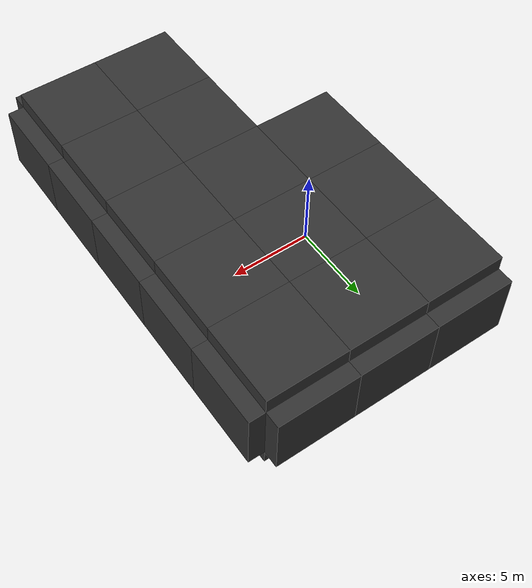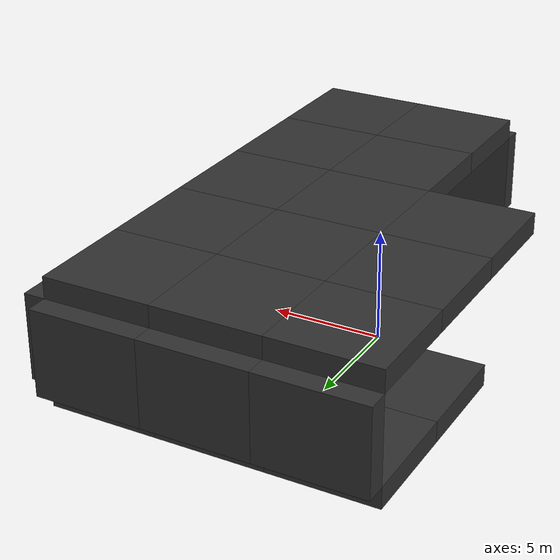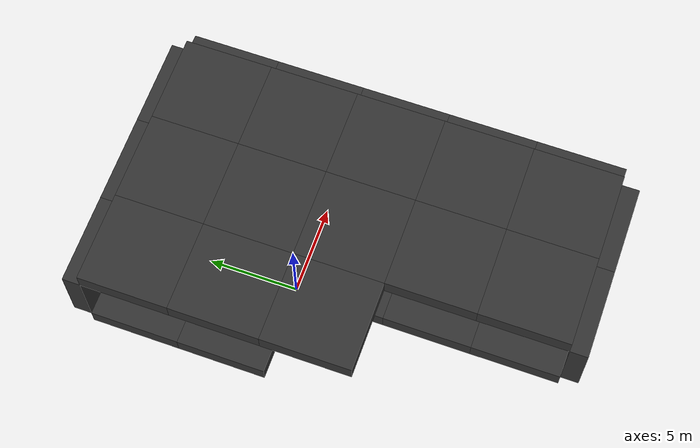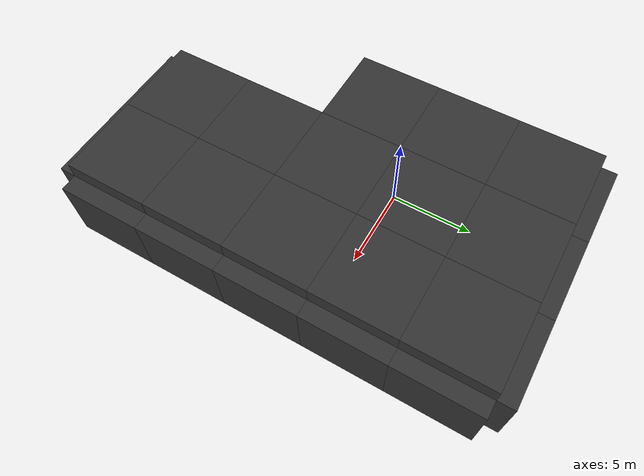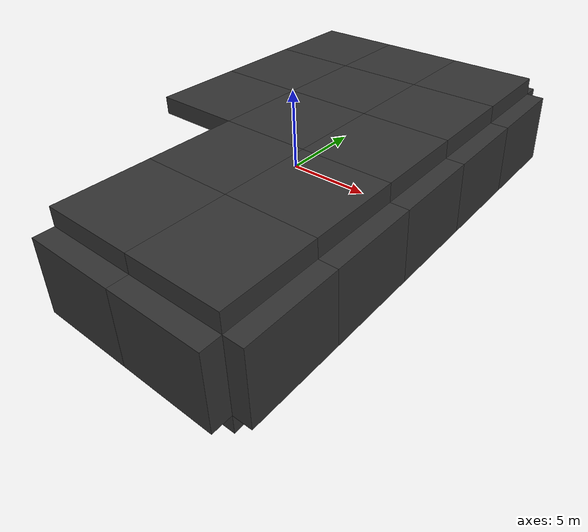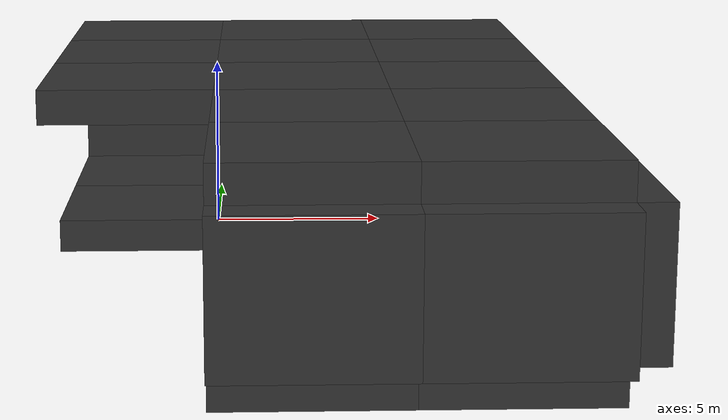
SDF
<sdf version="1.7">
 <world name="RG1">
  <model name="ceiling_13">
   <static>true</static>
   <pose>-2.5 -2.5 4.5 0.0 0.0 0.0</pose>
   <link name="ceiling_13-base-link">
    <visual name="ceiling_13-visual">
     <geometry><box><size>5 5 1.0</size></box></geometry>
     <material><diffuse>0.2 0.2 0.2 1</diffuse><specular>0.1 0.1 0.1 1</specular></material>
    </visual>
    <collision name="ceiling_13-collision"><geometry><box><size>5 5 1.0</size></box></geometry></collision>
    <light type="point" name="ceiling_13-light">
     <pose>0 0 -1 0 0 0</pose>
     <cast_shadows>false</cast_shadows>
     <diffuse>0.8 0.8 0.8 1</diffuse>
     <attenuation>
      <range>10</range>
      <constant>0.8</constant>
      <linear>0.05</linear>
      <quadratic>0.01</quadratic>
     </attenuation>
    </light>
   </link>
  </model>
  <model name="floor_14">
   <static>true</static>
   <pose>-2.5 2.5 -0.5 0.0 0.0 0.0</pose>
   <link name="floor_14-base-link">
    <visual name="floor_14-visual">
     <geometry><box><size>5 5 1.0</size></box></geometry>
     <material><diffuse>0.2 0.2 0.2 1</diffuse><specular>0.1 0.1 0.1 1</specular></material>
    </visual>
    <collision name="floor_14-collision"><geometry><box><size>5 5 1.0</size></box></geometry></collision>
   </link>
  </model>
  <model name="ceiling_14">
   <static>true</static>
   <pose>-2.5 2.5 4.5 0.0 0.0 0.0</pose>
   <link name="ceiling_14-base-link">
    <visual name="ceiling_14-visual">
     <geometry><box><size>5 5 1.0</size></box></geometry>
     <material><diffuse>0.2 0.2 0.2 1</diffuse><specular>0.1 0.1 0.1 1</specular></material>
    </visual>
    <collision name="ceiling_14-collision"><geometry><box><size>5 5 1.0</size></box></geometry></collision>
    <light type="point" name="ceiling_14-light">
     <pose>0 0 -1 0 0 0</pose>
     <cast_shadows>false</cast_shadows>
     <diffuse>0.8 0.8 0.8 1</diffuse>
     <attenuation>
      <range>10</range>
      <constant>0.8</constant>
      <linear>0.05</linear>
      <quadratic>0.01</quadratic>
     </attenuation>
    </light>
   </link>
  </model>
  <model name="floor_15">
   <static>true</static>
   <pose>-2.5 7.5 -0.5 0.0 0.0 0.0</pose>
   <link name="floor_15-base-link">
    <visual name="floor_15-visual">
     <geometry><box><size>5 5 1.0</size></box></geometry>
     <material><diffuse>0.2 0.2 0.2 1</diffuse><specular>0.1 0.1 0.1 1</specular></material>
    </visual>
    <collision name="floor_15-collision"><geometry><box><size>5 5 1.0</size></box></geometry></collision>
   </link>
  </model>
  <model name="ceiling_15">
   <static>true</static>
   <pose>-2.5 7.5 4.5 0.0 0.0 0.0</pose>
   <link name="ceiling_15-base-link">
    <visual name="ceiling_15-visual">
     <geometry><box><size>5 5 1.0</size></box></geometry>
     <material><diffuse>0.2 0.2 0.2 1</diffuse><specular>0.1 0.1 0.1 1</specular></material>
    </visual>
    <collision name="ceiling_15-collision"><geometry><box><size>5 5 1.0</size></box></geometry></collision>
    <light type="point" name="ceiling_15-light">
     <pose>0 0 -1 0 0 0</pose>
     <cast_shadows>false</cast_shadows>
     <diffuse>0.8 0.8 0.8 1</diffuse>
     <attenuation>
      <range>10</range>
      <constant>0.8</constant>
      <linear>0.05</linear>
      <quadratic>0.01</quadratic>
     </attenuation>
    </light>
   </link>
  </model>
  <model name="wall_11">
   <static>true</static>
   <pose>-2.5 10.5 2.0 0.0 0.0 0.0</pose>
   <link name="wall_11-base-link">
    <visual name="wall_11-visual">
     <geometry><box><size>5 1 4</size></box></geometry>
     <material><diffuse>0.2 0.2 0.2 1</diffuse><specular>0.1 0.1 0.1 1</specular></material>
    </visual>
    <collision name="wall_11-collision"><geometry><box><size>5 1 4</size></box></geometry></collision>
   </link>
  </model>
  <model name="floor_16">
   <static>true</static>
   <pose>2.5 -12.5 -0.5 0.0 0.0 0.0</pose>
   <link name="floor_16-base-link">
    <visual name="floor_16-visual">
     <geometry><box><size>5 5 1.0</size></box></geometry>
     <material><diffuse>0.2 0.2 0.2 1</diffuse><specular>0.1 0.1 0.1 1</specular></material>
    </visual>
    <collision name="floor_16-collision"><geometry><box><size>5 5 1.0</size></box></geometry></collision>
   </link>
  </model>
  <model name="ceiling_16">
   <static>true</static>
   <pose>2.5 -12.5 4.5 0.0 0.0 0.0</pose>
   <link name="ceiling_16-base-link">
    <visual name="ceiling_16-visual">
     <geometry><box><size>5 5 1.0</size></box></geometry>
     <material><diffuse>0.2 0.2 0.2 1</diffuse><specular>0.1 0.1 0.1 1</specular></material>
    </visual>
    <collision name="ceiling_16-collision"><geometry><box><size>5 5 1.0</size></box></geometry></collision>
    <light type="point" name="ceiling_16-light">
     <pose>0 0 -1 0 0 0</pose>
     <cast_shadows>false</cast_shadows>
     <diffuse>0.8 0.8 0.8 1</diffuse>
     <attenuation>
      <range>10</range>
      <constant>0.8</constant>
      <linear>0.05</linear>
      <quadratic>0.01</quadratic>
     </attenuation>
    </light>
   </link>
  </model>
  <model name="wall_12">
   <static>true</static>
   <pose>2.5 -15.5 2.0 0.0 0.0 0.0</pose>
   <link name="wall_12-base-link">
    <visual name="wall_12-visual">
     <geometry><box><size>5 1 4</size></box></geometry>
     <material><diffuse>0.2 0.2 0.2 1</diffuse><specular>0.1 0.1 0.1 1</specular></material>
    </visual>
    <collision name="wall_12-collision"><geometry><box><size>5 1 4</size></box></geometry></collision>
   </link>
  </model>
  <model name="floor_17">
   <static>true</static>
   <pose>2.5 -7.5 -0.5 0.0 0.0 0.0</pose>
   <link name="floor_17-base-link">
    <visual name="floor_17-visual">
     <geometry><box><size>5 5 1.0</size></box></geometry>
     <material><diffuse>0.2 0.2 0.2 1</diffuse><specular>0.1 0.1 0.1 1</specular></material>
    </visual>
    <collision name="floor_17-collision"><geometry><box><size>5 5 1.0</size></box></geometry></collision>
   </link>
  </model>
  <model name="ceiling_17">
   <static>true</static>
   <pose>2.5 -7.5 4.5 0.0 0.0 0.0</pose>
   <link name="ceiling_17-base-link">
    <visual name="ceiling_17-visual">
     <geometry><box><size>5 5 1.0</size></box></geometry>
     <material><diffuse>0.2 0.2 0.2 1</diffuse><specular>0.1 0.1 0.1 1</specular></material>
    </visual>
    <collision name="ceiling_17-collision"><geometry><box><size>5 5 1.0</size></box></geometry></collision>
    <light type="point" name="ceiling_17-light">
     <pose>0 0 -1 0 0 0</pose>
     <cast_shadows>false</cast_shadows>
     <diffuse>0.8 0.8 0.8 1</diffuse>
     <attenuation>
      <range>10</range>
      <constant>0.8</constant>
      <linear>0.05</linear>
      <quadratic>0.01</quadratic>
     </attenuation>
    </light>
   </link>
  </model>
  <model name="floor_18">
   <static>true</static>
   <pose>2.5 -2.5 -0.5 0.0 0.0 0.0</pose>
   <link name="floor_18-base-link">
    <visual name="floor_18-visual">
     <geometry><box><size>5 5 1.0</size></box></geometry>
     <material><diffuse>0.2 0.2 0.2 1</diffuse><specular>0.1 0.1 0.1 1</specular></material>
    </visual>
    <collision name="floor_18-collision"><geometry><box><size>5 5 1.0</size></box></geometry></collision>
   </link>
  </model>
  <model name="ceiling_18">
   <static>true</static>
   <pose>2.5 -2.5 4.5 0.0 0.0 0.0</pose>
   <link name="ceiling_18-base-link">
    <visual name="ceiling_18-visual">
     <geometry><box><size>5 5 1.0</size></box></geometry>
     <material><diffuse>0.2 0.2 0.2 1</diffuse><specular>0.1 0.1 0.1 1</specular></material>
    </visual>
    <collision name="ceiling_18-collision"><geometry><box><size>5 5 1.0</size></box></geometry></collision>
    <light type="point" name="ceiling_18-light">
     <pose>0 0 -1 0 0 0</pose>
     <cast_shadows>false</cast_shadows>
     <diffuse>0.8 0.8 0.8 1</diffuse>
     <attenuation>
      <range>10</range>
      <constant>0.8</constant>
      <linear>0.05</linear>
      <quadratic>0.01</quadratic>
     </attenuation>
    </light>
   </link>
  </model>
  <model name="floor_19">
   <static>true</static>
   <pose>2.5 2.5 -0.5 0.0 0.0 0.0</pose>
   <link name="floor_19-base-link">
    <visual name="floor_19-visual">
     <geometry><box><size>5 5 1.0</size></box></geometry>
     <material><diffuse>0.2 0.2 0.2 1</diffuse><specular>0.1 0.1 0.1 1</specular></material>
    </visual>
    <collision name="floor_19-collision"><geometry><box><size>5 5 1.0</size></box></geometry></collision>
   </link>
  </model>
  <model name="ceiling_19">
   <static>true</static>
   <pose>2.5 2.5 4.5 0.0 0.0 0.0</pose>
   <link name="ceiling_19-base-link">
    <visual name="ceiling_19-visual">
     <geometry><box><size>5 5 1.0</size></box></geometry>
     <material><diffuse>0.2 0.2 0.2 1</diffuse><specular>0.1 0.1 0.1 1</specular></material>
    </visual>
    <collision name="ceiling_19-collision"><geometry><box><size>5 5 1.0</size></box></geometry></collision>
    <light type="point" name="ceiling_19-light">
     <pose>0 0 -1 0 0 0</pose>
     <cast_shadows>false</cast_shadows>
     <diffuse>0.8 0.8 0.8 1</diffuse>
     <attenuation>
      <range>10</range>
      <constant>0.8</constant>
      <linear>0.05</linear>
      <quadratic>0.01</quadratic>
     </attenuation>
    </light>
   </link>
  </model>
  <model name="floor_20">
   <static>true</static>
   <pose>2.5 7.5 -0.5 0.0 0.0 0.0</pose>
   <link name="floor_20-base-link">
    <visual name="floor_20-visual">
     <geometry><box><size>5 5 1.0</size></box></geometry>
     <material><diffuse>0.2 0.2 0.2 1</diffuse><specular>0.1 0.1 0.1 1</specular></material>
    </visual>
    <collision name="floor_20-collision"><geometry><box><size>5 5 1.0</size></box></geometry></collision>
   </link>
  </model>
  <model name="ceiling_20">
   <static>true</static>
   <pose>2.5 7.5 4.5 0.0 0.0 0.0</pose>
   <link name="ceiling_20-base-link">
    <visual name="ceiling_20-visual">
     <geometry><box><size>5 5 1.0</size></box></geometry>
     <material><diffuse>0.2 0.2 0.2 1</diffuse><specular>0.1 0.1 0.1 1</specular></material>
    </visual>
    <collision name="ceiling_20-collision"><geometry><box><size>5 5 1.0</size></box></geometry></collision>
    <light type="point" name="ceiling_20-light">
     <pose>0 0 -1 0 0 0</pose>
     <cast_shadows>false</cast_shadows>
     <diffuse>0.8 0.8 0.8 1</diffuse>
     <attenuation>
      <range>10</range>
      <constant>0.8</constant>
      <linear>0.05</linear>
      <quadratic>0.01</quadratic>
     </attenuation>
    </light>
   </link>
  </model>
  <model name="wall_13">
   <static>true</static>
   <pose>2.5 10.5 2.0 0.0 0.0 0.0</pose>
   <link name="wall_13-base-link">
    <visual name="wall_13-visual">
     <geometry><box><size>5 1 4</size></box></geometry>
     <material><diffuse>0.2 0.2 0.2 1</diffuse><specular>0.1 0.1 0.1 1</specular></material>
    </visual>
    <collision name="wall_13-collision"><geometry><box><size>5 1 4</size></box></geometry></collision>
   </link>
  </model>
  <model name="floor_21">
   <static>true</static>
   <pose>7.5 -12.5 -0.5 0.0 0.0 0.0</pose>
   <link name="floor_21-base-link">
    <visual name="floor_21-visual">
     <geometry><box><size>5 5 1.0</size></box></geometry>
     <material><diffuse>0.2 0.2 0.2 1</diffuse><specular>0.1 0.1 0.1 1</specular></material>
    </visual>
    <collision name="floor_21-collision"><geometry><box><size>5 5 1.0</size></box></geometry></collision>
   </link>
  </model>
  <model name="ceiling_21">
   <static>true</static>
   <pose>7.5 -12.5 4.5 0.0 0.0 0.0</pose>
   <link name="ceiling_21-base-link">
    <visual name="ceiling_21-visual">
     <geometry><box><size>5 5 1.0</size></box></geometry>
     <material><diffuse>0.2 0.2 0.2 1</diffuse><specular>0.1 0.1 0.1 1</specular></material>
    </visual>
    <collision name="ceiling_21-collision"><geometry><box><size>5 5 1.0</size></box></geometry></collision>
    <light type="point" name="ceiling_21-light">
     <pose>0 0 -1 0 0 0</pose>
     <cast_shadows>false</cast_shadows>
     <diffuse>0.8 0.8 0.8 1</diffuse>
     <attenuation>
      <range>10</range>
      <constant>0.8</constant>
      <linear>0.05</linear>
      <quadratic>0.01</quadratic>
     </attenuation>
    </light>
   </link>
  </model>
  <model name="wall_14">
   <static>true</static>
   <pose>10.5 -12.5 2.0 0.0 0.0 1.570796326795</pose>
   <link name="wall_14-base-link">
    <visual name="wall_14-visual">
     <geometry><box><size>5 1 4</size></box></geometry>
     <material><diffuse>0.2 0.2 0.2 1</diffuse><specular>0.1 0.1 0.1 1</specular></material>
    </visual>
    <collision name="wall_14-collision"><geometry><box><size>5 1 4</size></box></geometry></collision>
   </link>
  </model>
  <model name="wall_15">
   <static>true</static>
   <pose>7.5 -15.5 2.0 0.0 0.0 0.0</pose>
   <link name="wall_15-base-link">
    <visual name="wall_15-visual">
     <geometry><box><size>5 1 4</size></box></geometry>
     <material><diffuse>0.2 0.2 0.2 1</diffuse><specular>0.1 0.1 0.1 1</specular></material>
    </visual>
    <collision name="wall_15-collision"><geometry><box><size>5 1 4</size></box></geometry></collision>
   </link>
  </model>
  <model name="floor_22">
   <static>true</static>
   <pose>7.5 -7.5 -0.5 0.0 0.0 0.0</pose>
   <link name="floor_22-base-link">
    <visual name="floor_22-visual">
     <geometry><box><size>5 5 1.0</size></box></geometry>
     <material><diffuse>0.2 0.2 0.2 1</diffuse><specular>0.1 0.1 0.1 1</specular></material>
    </visual>
    <collision name="floor_22-collision"><geometry><box><size>5 5 1.0</size></box></geometry></collision>
   </link>
  </model>
  <model name="ceiling_22">
   <static>true</static>
   <pose>7.5 -7.5 4.5 0.0 0.0 0.0</pose>
   <link name="ceiling_22-base-link">
    <visual name="ceiling_22-visual">
     <geometry><box><size>5 5 1.0</size></box></geometry>
     <material><diffuse>0.2 0.2 0.2 1</diffuse><specular>0.1 0.1 0.1 1</specular></material>
    </visual>
    <collision name="ceiling_22-collision"><geometry><box><size>5 5 1.0</size></box></geometry></collision>
    <light type="point" name="ceiling_22-light">
     <pose>0 0 -1 0 0 0</pose>
     <cast_shadows>false</cast_shadows>
     <diffuse>0.8 0.8 0.8 1</diffuse>
     <attenuation>
      <range>10</range>
      <constant>0.8</constant>
      <linear>0.05</linear>
      <quadratic>0.01</quadratic>
     </attenuation>
    </light>
   </link>
  </model>
  <model name="wall_16">
   <static>true</static>
   <pose>10.5 -7.5 2.0 0.0 0.0 1.570796326795</pose>
   <link name="wall_16-base-link">
    <visual name="wall_16-visual">
     <geometry><box><size>5 1 4</size></box></geometry>
     <material><diffuse>0.2 0.2 0.2 1</diffuse><specular>0.1 0.1 0.1 1</specular></material>
    </visual>
    <collision name="wall_16-collision"><geometry><box><size>5 1 4</size></box></geometry></collision>
   </link>
  </model>
  <model name="floor_23">
   <static>true</static>
   <pose>7.5 -2.5 -0.5 0.0 0.0 0.0</pose>
   <link name="floor_23-base-link">
    <visual name="floor_23-visual">
     <geometry><box><size>5 5 1.0</size></box></geometry>
     <material><diffuse>0.2 0.2 0.2 1</diffuse><specular>0.1 0.1 0.1 1</specular></material>
    </visual>
    <collision name="floor_23-collision"><geometry><box><size>5 5 1.0</size></box></geometry></collision>
   </link>
  </model>
  <model name="ceiling_23">
   <static>true</static>
   <pose>7.5 -2.5 4.5 0.0 0.0 0.0</pose>
   <link name="ceiling_23-base-link">
    <visual name="ceiling_23-visual">
     <geometry><box><size>5 5 1.0</size></box></geometry>
     <material><diffuse>0.2 0.2 0.2 1</diffuse><specular>0.1 0.1 0.1 1</specular></material>
    </visual>
    <collision name="ceiling_23-collision"><geometry><box><size>5 5 1.0</size></box></geometry></collision>
    <light type="point" name="ceiling_23-light">
     <pose>0 0 -1 0 0 0</pose>
     <cast_shadows>false</cast_shadows>
     <diffuse>0.8 0.8 0.8 1</diffuse>
     <attenuation>
      <range>10</range>
      <constant>0.8</constant>
      <linear>0.05</linear>
      <quadratic>0.01</quadratic>
     </attenuation>
    </light>
   </link>
  </model>
  <model name="wall_17">
   <static>true</static>
   <pose>10.5 -2.5 2.0 0.0 0.0 1.570796326795</pose>
   <link name="wall_17-base-link">
    <visual name="wall_17-visual">
     <geometry><box><size>5 1 4</size></box></geometry>
     <material><diffuse>0.2 0.2 0.2 1</diffuse><specular>0.1 0.1 0.1 1</specular></material>
    </visual>
    <collision name="wall_17-collision"><geometry><box><size>5 1 4</size></box></geometry></collision>
   </link>
  </model>
  <model name="floor_24">
   <static>true</static>
   <pose>7.5 2.5 -0.5 0.0 0.0 0.0</pose>
   <link name="floor_24-base-link">
    <visual name="floor_24-visual">
     <geometry><box><size>5 5 1.0</size></box></geometry>
     <material><diffuse>0.2 0.2 0.2 1</diffuse><specular>0.1 0.1 0.1 1</specular></material>
    </visual>
    <collision name="floor_24-collision"><geometry><box><size>5 5 1.0</size></box></geometry></collision>
   </link>
  </model>
  <model name="ceiling_24">
   <static>true</static>
   <pose>7.5 2.5 4.5 0.0 0.0 0.0</pose>
   <link name="ceiling_24-base-link">
    <visual name="ceiling_24-visual">
     <geometry><box><size>5 5 1.0</size></box></geometry>
     <material><diffuse>0.2 0.2 0.2 1</diffuse><specular>0.1 0.1 0.1 1</specular></material>
    </visual>
    <collision name="ceiling_24-collision"><geometry><box><size>5 5 1.0</size></box></geometry></collision>
    <light type="point" name="ceiling_24-light">
     <pose>0 0 -1 0 0 0</pose>
     <cast_shadows>false</cast_shadows>
     <diffuse>0.8 0.8 0.8 1</diffuse>
     <attenuation>
      <range>10</range>
      <constant>0.8</constant>
      <linear>0.05</linear>
      <quadratic>0.01</quadratic>
     </attenuation>
    </light>
   </link>
  </model>
  <model name="wall_18">
   <static>true</static>
   <pose>10.5 2.5 2.0 0.0 0.0 1.570796326795</pose>
   <link name="wall_18-base-link">
    <visual name="wall_18-visual">
     <geometry><box><size>5 1 4</size></box></geometry>
     <material><diffuse>0.2 0.2 0.2 1</diffuse><specular>0.1 0.1 0.1 1</specular></material>
    </visual>
    <collision name="wall_18-collision"><geometry><box><size>5 1 4</size></box></geometry></collision>
   </link>
  </model>
  <model name="floor_25">
   <static>true</static>
   <pose>7.5 7.5 -0.5 0.0 0.0 0.0</pose>
   <link name="floor_25-base-link">
    <visual name="floor_25-visual">
     <geometry><box><size>5 5 1.0</size></box></geometry>
     <material><diffuse>0.2 0.2 0.2 1</diffuse><specular>0.1 0.1 0.1 1</specular></material>
    </visual>
    <collision name="floor_25-collision"><geometry><box><size>5 5 1.0</size></box></geometry></collision>
   </link>
  </model>
  <model name="ceiling_25">
   <static>true</static>
   <pose>7.5 7.5 4.5 0.0 0.0 0.0</pose>
   <link name="ceiling_25-base-link">
    <visual name="ceiling_25-visual">
     <geometry><box><size>5 5 1.0</size></box></geometry>
     <material><diffuse>0.2 0.2 0.2 1</diffuse><specular>0.1 0.1 0.1 1</specular></material>
    </visual>
    <collision name="ceiling_25-collision"><geometry><box><size>5 5 1.0</size></box></geometry></collision>
    <light type="point" name="ceiling_25-light">
     <pose>0 0 -1 0 0 0</pose>
     <cast_shadows>false</cast_shadows>
     <diffuse>0.8 0.8 0.8 1</diffuse>
     <attenuation>
      <range>10</range>
      <constant>0.8</constant>
      <linear>0.05</linear>
      <quadratic>0.01</quadratic>
     </attenuation>
    </light>
   </link>
  </model>
  <model name="wall_19">
   <static>true</static>
   <pose>10.5 7.5 2.0 0.0 0.0 1.570796326795</pose>
   <link name="wall_19-base-link">
    <visual name="wall_19-visual">
     <geometry><box><size>5 1 4</size></box></geometry>
     <material><diffuse>0.2 0.2 0.2 1</diffuse><specular>0.1 0.1 0.1 1</specular></material>
    </visual>
    <collision name="wall_19-collision"><geometry><box><size>5 1 4</size></box></geometry></collision>
   </link>
  </model>
  <model name="wall_20">
   <static>true</static>
   <pose>7.5 10.5 2.0 0.0 0.0 0.0</pose>
   <link name="wall_20-base-link">
    <visual name="wall_20-visual">
     <geometry><box><size>5 1 4</size></box></geometry>
     <material><diffuse>0.2 0.2 0.2 1</diffuse><specular>0.1 0.1 0.1 1</specular></material>
    </visual>
    <collision name="wall_20-collision"><geometry><box><size>5 1 4</size></box></geometry></collision>
   </link>
  </model>
 </world>
</sdf>
